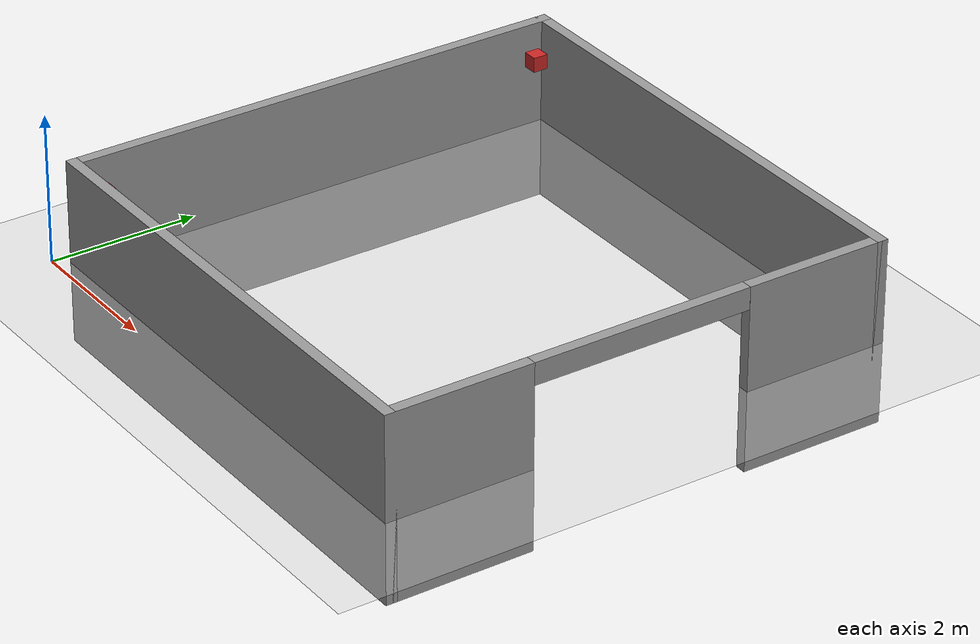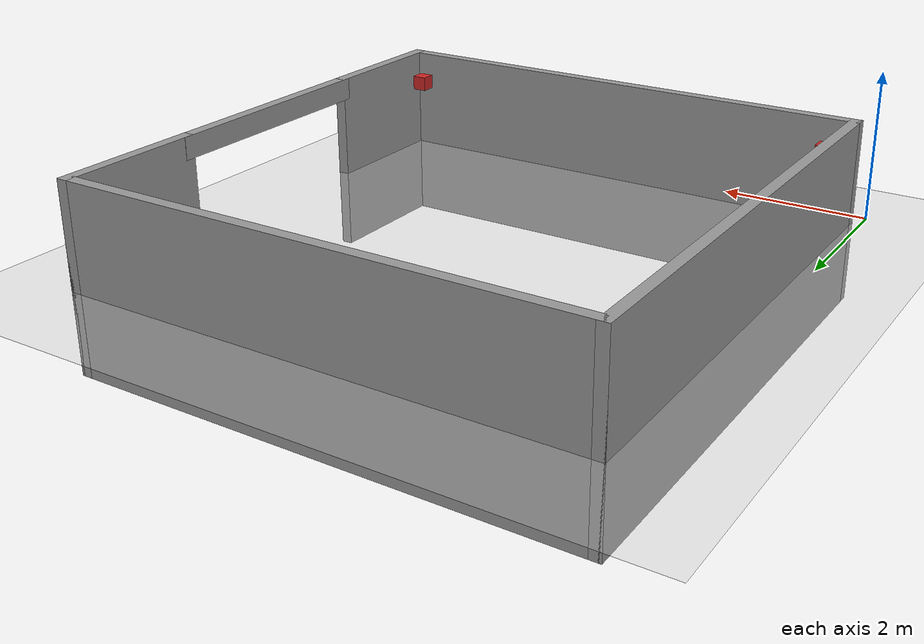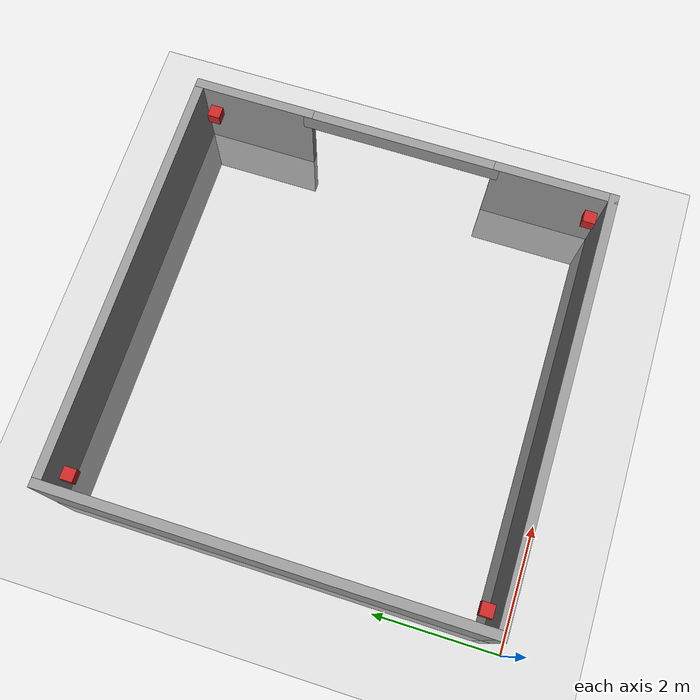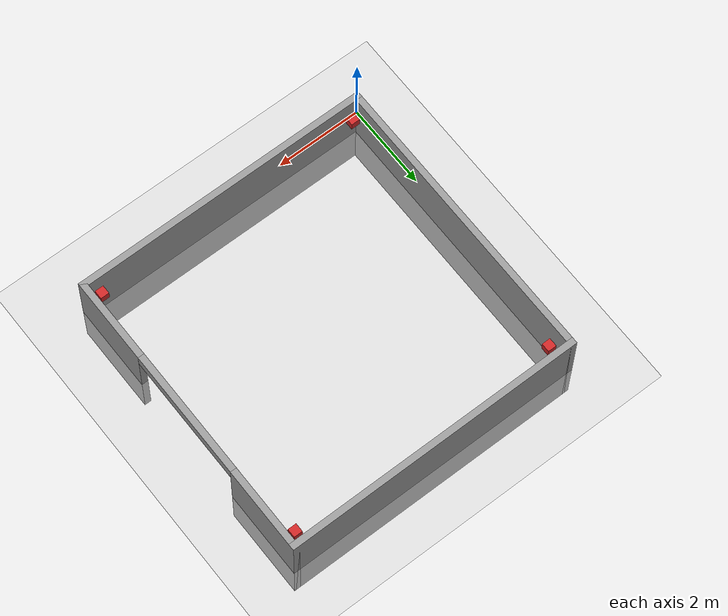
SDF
<?xml version="1.0"?>
<sdf version="1.6">
  <world name="default">

    <include>
      <uri>model://ground_plane</uri>
    </include>

    <include>
      <uri>model://sun</uri>
    </include>

    <scene>
      <shadows>false</shadows>
    </scene>

    <gui fullscreen='0'>
      <camera name='user_camera'>
        <pose frame=''>0.319654 -0.235002 9.29441 0 1.5138 0.009599</pose>
        <view_controller>orbit</view_controller>
        <projection_type>perspective</projection_type>
      </camera>
    </gui>

    <physics type="ode">
      <real_time_update_rate>1000.0</real_time_update_rate>
      <max_step_size>0.001</max_step_size>
      <real_time_factor>1</real_time_factor>
      <ode>
        <solver>
          <type>quick</type>
          <iters>150</iters>
          <precon_iters>0</precon_iters>
          <sor>1.400000</sor>
          <use_dynamic_moi_rescaling>1</use_dynamic_moi_rescaling>
        </solver>
        <constraints>
          <cfm>0.00001</cfm>
          <erp>0.2</erp>
          <contact_max_correcting_vel>2000.000000</contact_max_correcting_vel>
          <contact_surface_layer>0.01000</contact_surface_layer>
        </constraints>
      </ode>
    </physics>

    <spherical_coordinates>
      <heading_deg>180</heading_deg>
    </spherical_coordinates>

    <model name="uwb_anchor0">
      <pose>6.8 6.8 1 0 0 0</pose>
      <static>1</static>
      <link name="link">
        <visual name="visual">
          <geometry>
            <box>
              <size>0.2 0.2 0.2</size>
            </box>
          </geometry>
          <material>
            <script>
              <uri>file://media/materials/scripts/gazebo.material</uri>
              <!-- http://wiki.ros.org/simulator_gazebo/Tutorials/ListOfMaterials -->
              <name>Gazebo/Red</name>
            </script>
          </material>
        </visual>
      </link>
    </model>

    <model name="uwb_anchor1">
      <pose>6.8 0.5 1 0 0 0</pose>
      <static>1</static>
      <link name="link">
        <visual name="visual">
          <geometry>
            <box>
              <size>0.2 0.2 0.2</size>
            </box>
          </geometry>
          <material>
            <script>
              <uri>file://media/materials/scripts/gazebo.material</uri>
              <!-- http://wiki.ros.org/simulator_gazebo/Tutorials/ListOfMaterials -->
              <name>Gazebo/Red</name>
            </script>
          </material>
        </visual>
      </link>
    </model>

    <model name="uwb_anchor2">
      <pose>0.5 0.5 1 0 0 0</pose>
      <static>1</static>
      <link name="link">
        <visual name="visual">
          <geometry>
            <box>
              <size>0.2 0.2 0.2</size>
            </box>
          </geometry>
          <material>
            <script>
              <uri>file://media/materials/scripts/gazebo.material</uri>
              <!-- http://wiki.ros.org/simulator_gazebo/Tutorials/ListOfMaterials -->
              <name>Gazebo/Red</name>
            </script>
          </material>
        </visual>
      </link>
    </model>

    <model name="uwb_anchor3">
      <pose>0.5 6.8 1 0 0 0</pose>
      <static>1</static>
      <link name="link">
        <visual name="visual">
          <geometry>
            <box>
              <size>0.2 0.2 0.2</size>
            </box>
          </geometry>
          <material>
            <script>
              <uri>file://media/materials/scripts/gazebo.material</uri>
              <!-- http://wiki.ros.org/simulator_gazebo/Tutorials/ListOfMaterials -->
              <name>Gazebo/Red</name>
            </script>
          </material>
        </visual>
      </link>
    </model>

    <model name="turtlebot3_uwb_gps">
      <static>1</static>
      <pose>5 3.2 0 0 0 0</pose>
      <include>
        <uri>model://turtlebot3_uwb_gps</uri>
      </include>
    </model>

  </world>
</sdf>

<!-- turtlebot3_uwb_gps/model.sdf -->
<sdf version='1.7'>
  <model name='turtlebot3_uwb_gps'>
    <model name='door'>
      <pose>1.36887 0.501995 1.09478 0 -0 0</pose>
      <link name='Wall_13'>
        <collision name='Wall_13_Collision'>
          <geometry>
            <box>
              <size>3.25 0.15 0.3</size>
            </box>
          </geometry>
          <pose>0 0 0.15 0 -0 0</pose>
        </collision>
        <visual name='Wall_13_Visual'>
          <pose>0 0 0.15 0 -0 0</pose>
          <geometry>
            <box>
              <size>3.25 0.15 0.3</size>
            </box>
          </geometry>
          <material>
            <script>
              <uri>file://media/materials/scripts/gazebo.material</uri>
              <name>Gazebo/Grey</name>
            </script>
            <ambient>1 1 1 1</ambient>
          </material>
          <meta>
            <layer>0</layer>
          </meta>
        </visual>
        <pose>0.6855 0 0 0 -0 -1.5708</pose>
      </link>
      <static>1</static>
    </model>
    <model name='turtlebot3_uwb_gps'>
      <pose>-1.36887 0.481997 -1.10478 0 -0 0</pose>
      <link name='Wall_0'>
        <collision name='Wall_0_Collision'>
          <geometry>
            <box>
              <size>7 0.15 2.5</size>
            </box>
          </geometry>
          <pose>0 0 1.25 0 -0 0</pose>
        </collision>
        <visual name='Wall_0_Visual'>
          <pose>0 0 1.25 0 -0 0</pose>
          <geometry>
            <box>
              <size>7 0.15 2.5</size>
            </box>
          </geometry>
          <material>
            <script>
              <uri>file://media/materials/scripts/gazebo.material</uri>
              <name>Gazebo/Grey</name>
            </script>
            <ambient>1 1 1 1</ambient>
          </material>
          <meta>
            <layer>0</layer>
          </meta>
        </visual>
        <pose>0 -3.425 0 0 -0 0</pose>
      </link>
      <link name='Wall_10'>
        <collision name='Wall_10_Collision'>
          <geometry>
            <box>
              <size>2 0.15 2.5</size>
            </box>
          </geometry>
          <pose>0 0 1.25 0 -0 0</pose>
        </collision>
        <visual name='Wall_10_Visual'>
          <pose>0 0 1.25 0 -0 0</pose>
          <geometry>
            <box>
              <size>2 0.15 2.5</size>
            </box>
          </geometry>
          <material>
            <script>
              <uri>file://media/materials/scripts/gazebo.material</uri>
              <name>Gazebo/Grey</name>
            </script>
            <ambient>1 1 1 1</ambient>
          </material>
          <meta>
            <layer>0</layer>
          </meta>
        </visual>
        <pose>3.425 -2.5 0 0 -0 1.5708</pose>
      </link>
      <link name='Wall_6'>
        <collision name='Wall_6_Collision'>
          <geometry>
            <box>
              <size>7 0.15 2.5</size>
            </box>
          </geometry>
          <pose>0 0 1.25 0 -0 0</pose>
        </collision>
        <visual name='Wall_6_Visual'>
          <pose>0 0 1.25 0 -0 0</pose>
          <geometry>
            <box>
              <size>7 0.15 2.5</size>
            </box>
          </geometry>
          <material>
            <script>
              <uri>file://media/materials/scripts/gazebo.material</uri>
              <name>Gazebo/Grey</name>
            </script>
            <ambient>1 1 1 1</ambient>
          </material>
          <meta>
            <layer>0</layer>
          </meta>
        </visual>
        <pose>-3.425 -0 0 0 -0 1.5708</pose>
      </link>
      <link name='Wall_7'>
        <collision name='Wall_7_Collision'>
          <geometry>
            <box>
              <size>7 0.15 2.5</size>
            </box>
          </geometry>
          <pose>0 0 1.25 0 -0 0</pose>
        </collision>
        <visual name='Wall_7_Visual'>
          <pose>0 0 1.25 0 -0 0</pose>
          <geometry>
            <box>
              <size>7 0.15 2.5</size>
            </box>
          </geometry>
          <material>
            <script>
              <uri>file://media/materials/scripts/gazebo.material</uri>
              <name>Gazebo/Grey</name>
            </script>
            <ambient>1 1 1 1</ambient>
          </material>
          <meta>
            <layer>0</layer>
          </meta>
        </visual>
        <pose>0 3.425 0 0 -0 0</pose>
      </link>
      <link name='Wall_8'>
        <collision name='Wall_8_Collision'>
          <geometry>
            <box>
              <size>2 0.15 2.5</size>
            </box>
          </geometry>
          <pose>0 0 1.25 0 -0 0</pose>
        </collision>
        <visual name='Wall_8_Visual'>
          <pose>0 0 1.25 0 -0 0</pose>
          <geometry>
            <box>
              <size>2 0.15 2.5</size>
            </box>
          </geometry>
          <material>
            <script>
              <uri>file://media/materials/scripts/gazebo.material</uri>
              <name>Gazebo/Grey</name>
            </script>
            <ambient>1 1 1 1</ambient>
          </material>
          <meta>
            <layer>0</layer>
          </meta>
        </visual>
        <pose>3.425 2.5 0 0 -0 -1.5708</pose>
      </link>
      <static>1</static>
    </model>
    <static>0</static>
    <allow_auto_disable>1</allow_auto_disable>
  </model>
</sdf>
